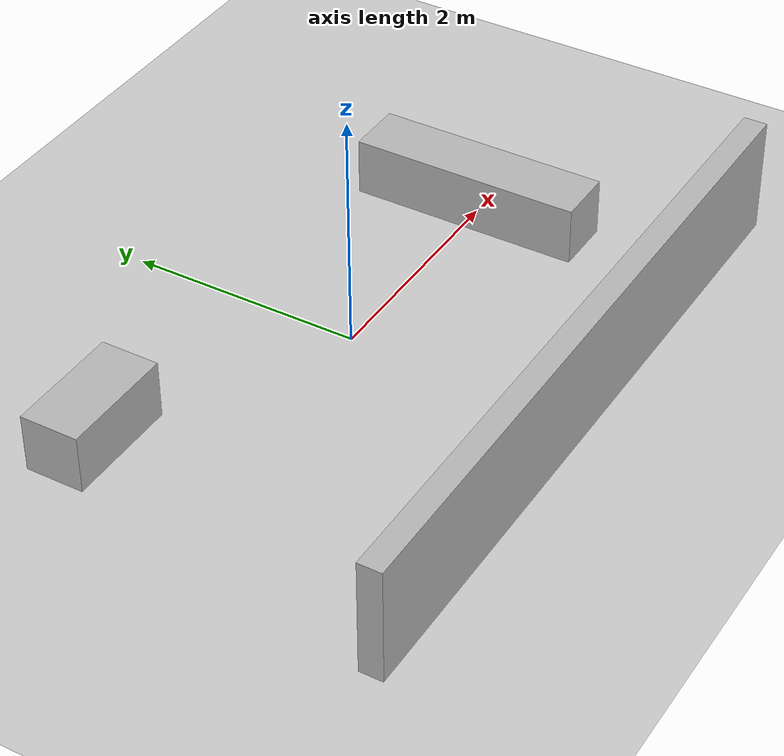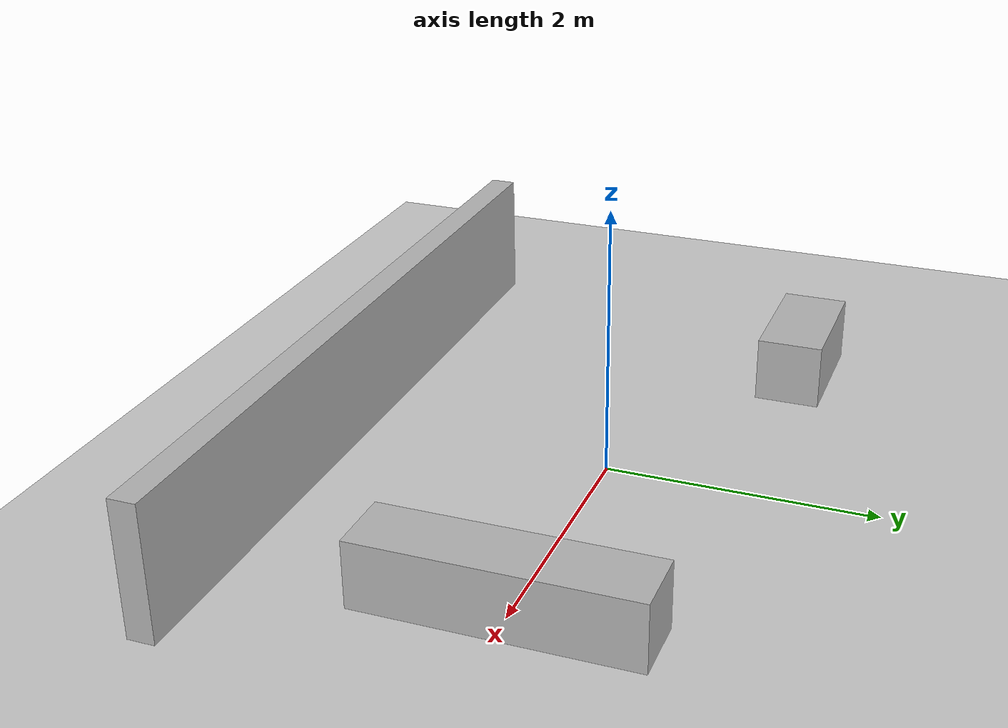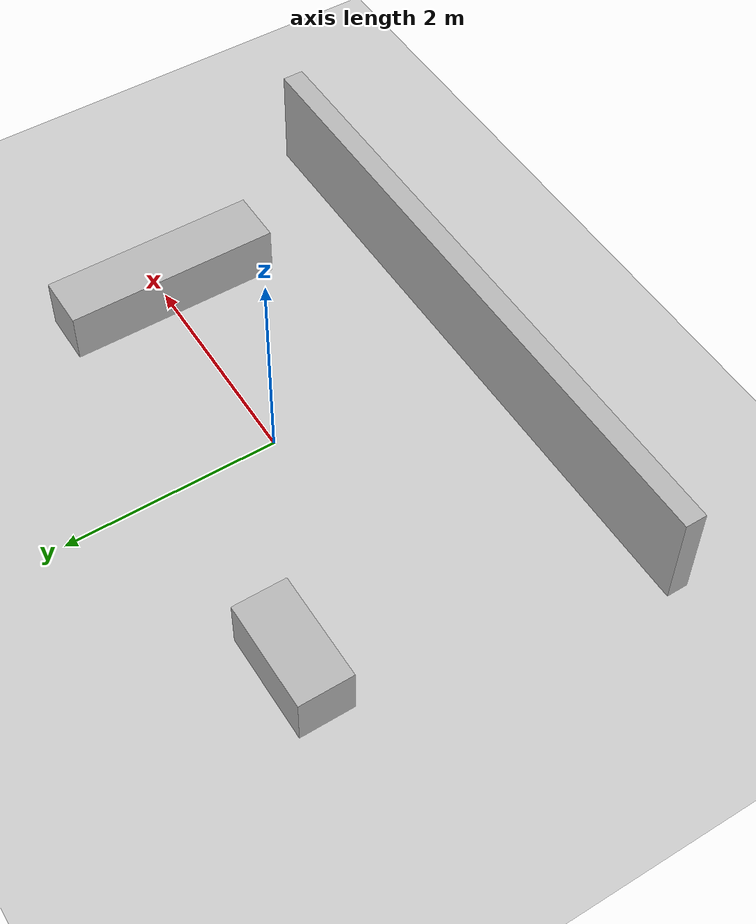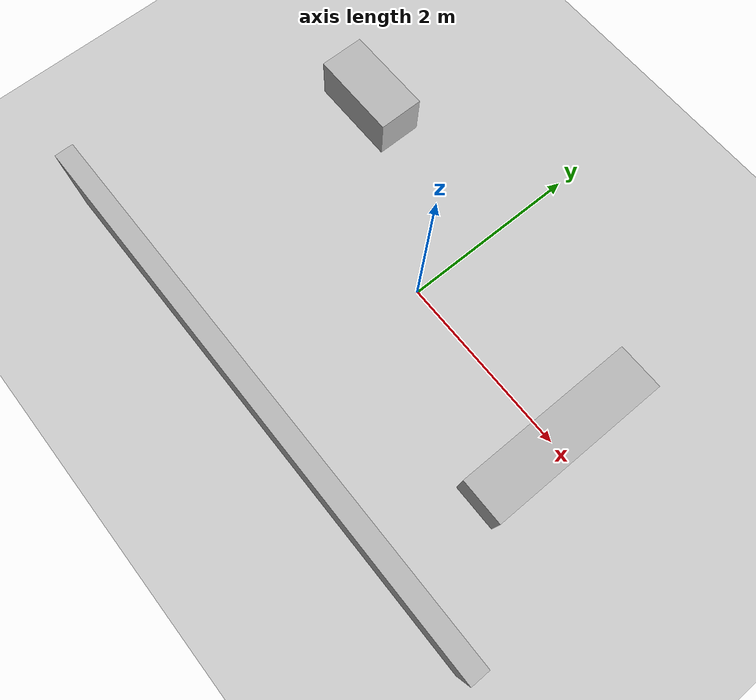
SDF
<?xml version="1.0"?>
<sdf version="1.9">
  <world name="sample_world">
    <gravity>0 0 -9.8</gravity>

    <plugin
      filename="gz-sim-physics-system"
      name="gz::sim::systems::Physics"/>
    <plugin
      filename="gz-sim-user-commands-system"
      name="gz::sim::systems::UserCommands"/>
    <plugin
      filename="gz-sim-scene-broadcaster-system"
      name="gz::sim::systems::SceneBroadcaster"/>
    <plugin
      filename="gz-sim-sensors-system"
      name="gz::sim::systems::Sensors">
      <render_engine>ogre2</render_engine>
    </plugin>

    <scene>
      <ambient>0.4 0.4 0.4 1.0</ambient>
      <background>0.8 0.9 1.0 1.0</background>
    </scene>

    <light name="sun" type="directional">
      <cast_shadows>true</cast_shadows>
      <pose>0 0 10 0 0 0</pose>
      <diffuse>0.8 0.8 0.8 1.0</diffuse>
      <specular>0.2 0.2 0.2 1.0</specular>
      <attenuation>
        <range>1000</range>
        <constant>0.9</constant>
        <linear>0.01</linear>
        <quadratic>0.001</quadratic>
      </attenuation>
      <direction>-0.4 0.2 -0.9</direction>
    </light>

    <model name="ground_plane">
      <static>true</static>
      <link name="link">
        <collision name="collision">
          <geometry>
            <plane>
              <normal>0 0 1</normal>
              <size>30 30</size>
            </plane>
          </geometry>
        </collision>
        <visual name="visual">
          <geometry>
            <plane>
              <normal>0 0 1</normal>
              <size>30 30</size>
            </plane>
          </geometry>
          <material>
            <ambient>0.8 0.8 0.8 1.0</ambient>
            <diffuse>0.8 0.8 0.8 1.0</diffuse>
          </material>
        </visual>
      </link>
    </model>

    <model name="box1">
      <static>true</static>
      <pose>2 0 0.25 0 0 0</pose>
      <link name="link">
        <collision name="collision">
          <geometry>
            <box>
              <size>0.5 2.0 0.5</size>
            </box>
          </geometry>
        </collision>
        <visual name="visual">
          <geometry>
            <box>
              <size>0.5 2.0 0.5</size>
            </box>
          </geometry>
        </visual>
      </link>
    </model>

    <model name="box2">
      <static>true</static>
      <pose>-2 1 0.25 0 0 0</pose>
      <link name="link">
        <collision name="collision">
          <geometry>
            <box>
              <size>1.0 0.5 0.5</size>
            </box>
          </geometry>
        </collision>
        <visual name="visual">
          <geometry>
            <box>
              <size>1.0 0.5 0.5</size>
            </box>
          </geometry>
        </visual>
      </link>
    </model>

    <model name="wall">
      <static>true</static>
      <pose>0 -2 0.5 0 0 0</pose>
      <link name="link">
        <collision name="collision">
          <geometry>
            <box>
              <size>6.0 0.2 1.0</size>
            </box>
          </geometry>
        </collision>
        <visual name="visual">
          <geometry>
            <box>
              <size>6.0 0.2 1.0</size>
            </box>
          </geometry>
        </visual>
      </link>
    </model>
  </world>
</sdf>
